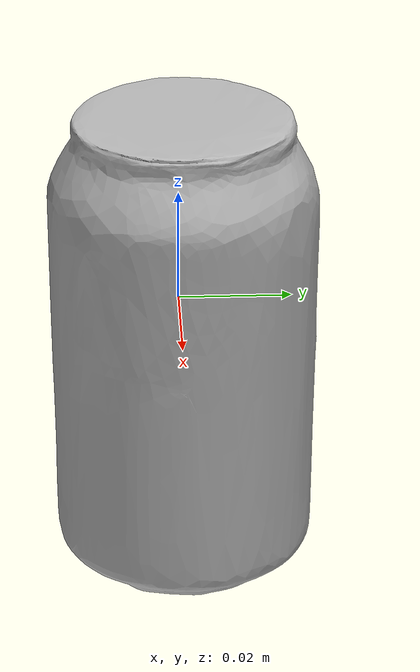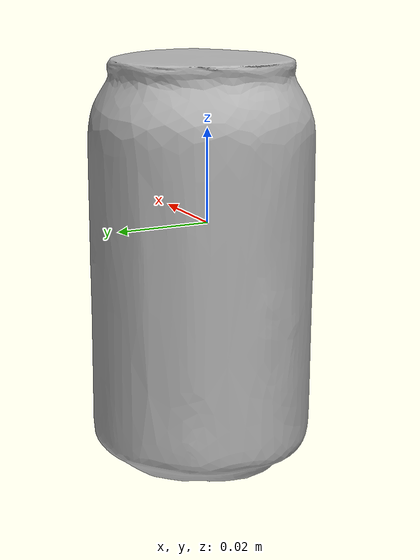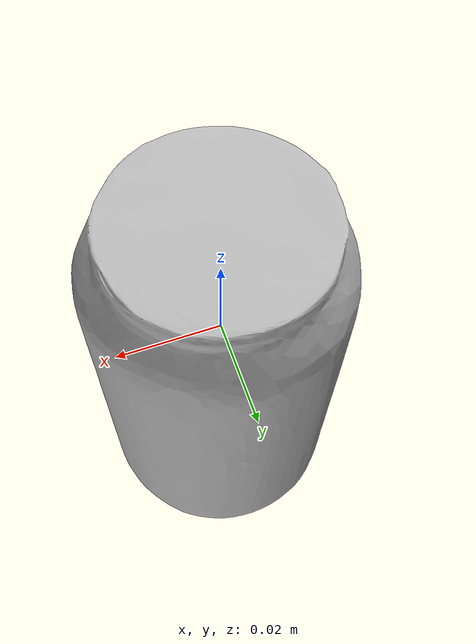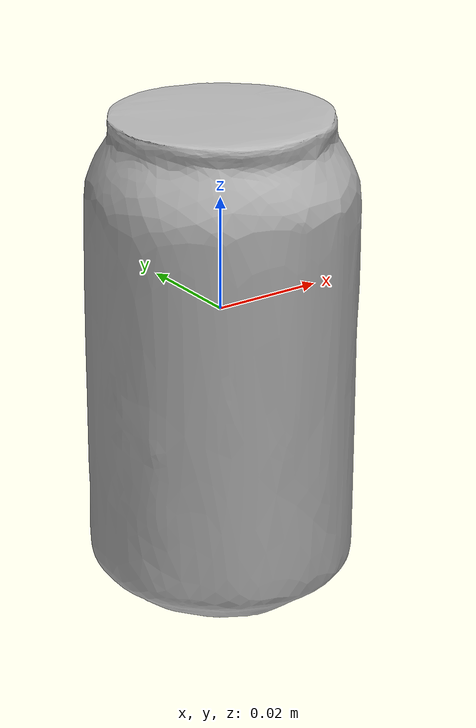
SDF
<?xml version="1.0" ?>
<sdf version="1.5">
  <model name="coke_can">
    <link name="link">
      <inertial>
        <pose>0 0 0.04 0 0 0</pose>
        <mass>0.390</mass>
        <inertia>
          <ixx>0.00055575</ixx>
          <ixy>0</ixy>
          <ixz>0</ixz>
          <iyy>0.00055575</iyy>
          <iyz>0</iyz>
          <izz>0.0001755</izz>
        </inertia>
      </inertial>
      <collision name="collision">
        <pose>0.003937 0.0047244 -0.18 0 0 0</pose>
        <geometry>
          <mesh>
            <uri>model://coke_can/meshes/coke_can.dae</uri>
            <scale>0.7 0.7 0.7</scale>
          </mesh>
        </geometry>
        <surface>
          <friction>
            <ode>
              <mu>1.0</mu>
              <mu2>1.0</mu2>
            </ode>
          </friction>
          <contact>
            <ode>
              <kp>1000000.0</kp>
              <kd>10.0</kd>
              <min_depth>0.001</min_depth>
              <max_vel>0.1</max_vel>
            </ode>
          </contact>
        </surface>
      </collision>
      <visual name="visual">
        <pose>0.003937 0.0047244 -0.18 0 0 0</pose>
        <geometry>
          <mesh>
            <uri>model://coke_can/meshes/coke_can.dae</uri>
            <scale>0.7 0.7 0.7</scale>
          </mesh>
        </geometry>
      </visual>
    </link>
  </model>
</sdf>
